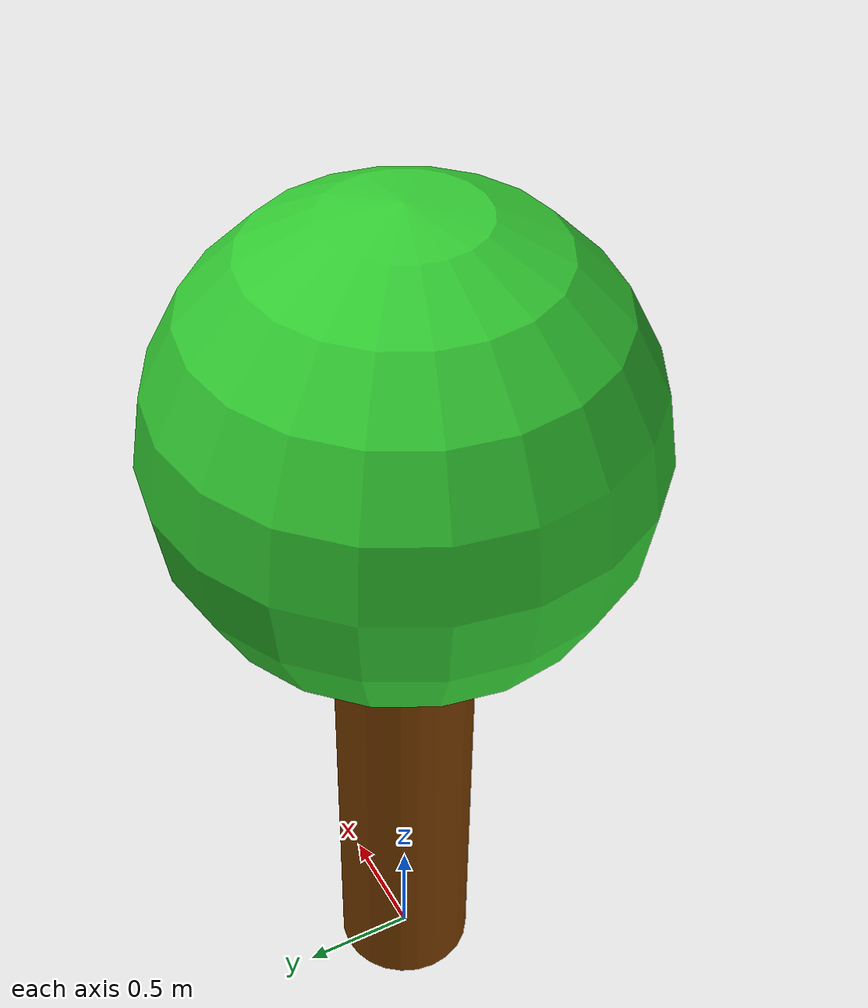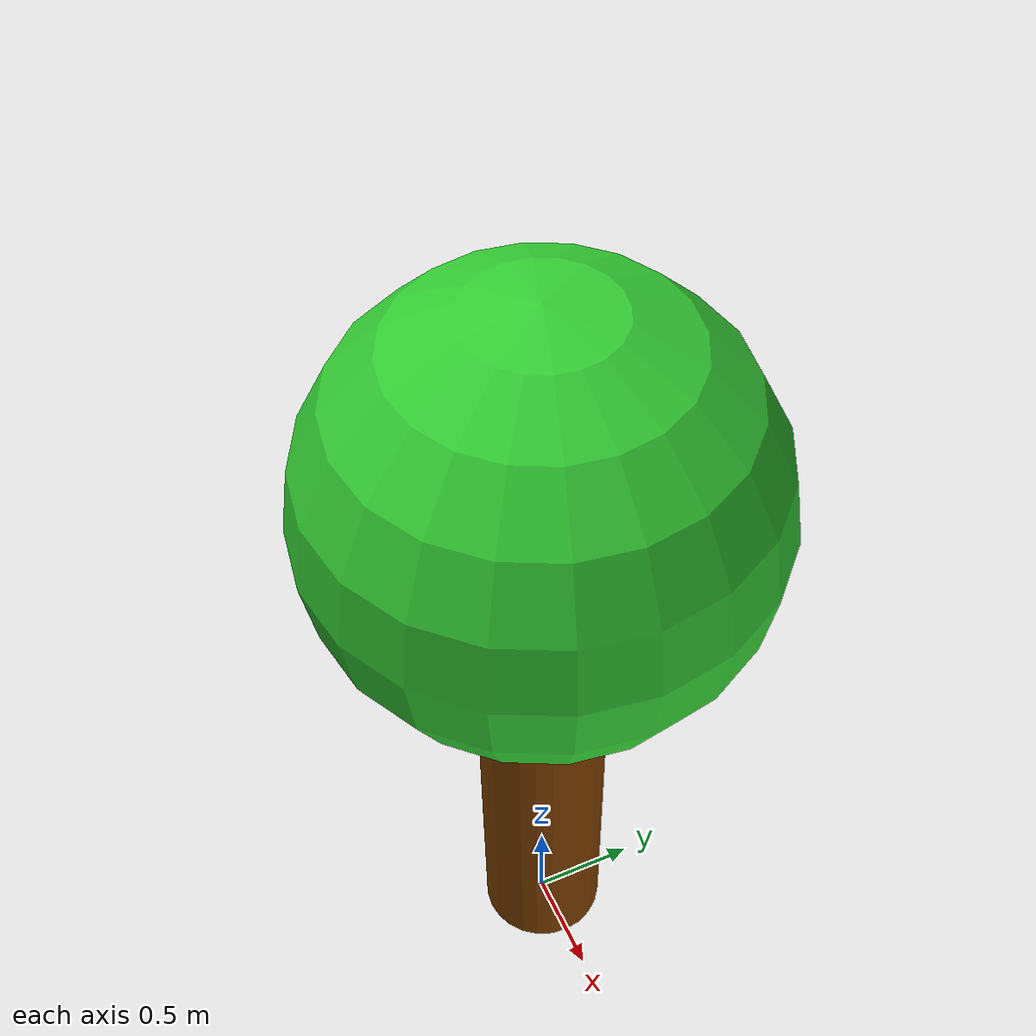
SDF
<?xml version="1.0" ?>
<sdf version="1.6">
  <model name="tree">
    <static>true</static>
    <link name="link">
      <pose>0 0 0 0 0 0</pose>

      <visual name="stam_visual">
        <pose>0 0 1.5 0 0 0</pose>
        <geometry>
          <cylinder>
            <radius>0.3</radius>
            <length>3</length>
          </cylinder>
        </geometry>
        <material>
          <ambient>0.4 0.2 0.0 1</ambient>
          <diffuse>0.5 0.25 0.0 1</diffuse>
        </material>
      </visual>

      <visual name="bladeren_visual">
        <pose>0 0 3 0 0 0</pose>
        <geometry>
          <sphere>
            <radius>1</radius>
          </sphere>
        </geometry>
        <material>
          <ambient>0.1 0.5 0.1 1</ambient>
          <diffuse>0.2 0.8 0.2 1</diffuse>
        </material>
      </visual>

      <collision name="collision">
        <pose>0 0 0.7 0 0 0</pose>
        <geometry>
          <cylinder>
            <radius>0.3</radius>
            <length>3</length>
          </cylinder>
        </geometry>
      </collision>

    </link>
  </model>
</sdf>
